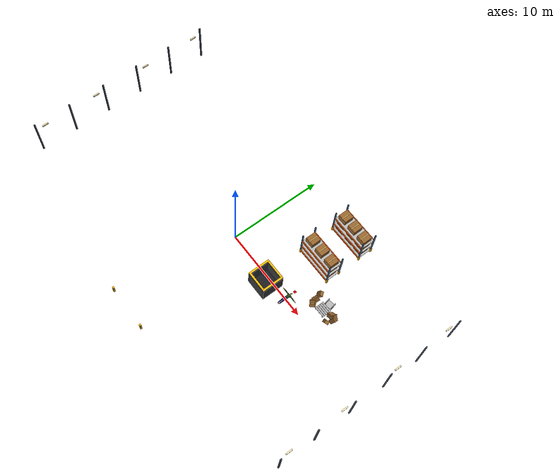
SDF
<sdf version="1.9">
 <world name="factory">
  <model name="pit_2">
   <static>true</static>
   <pose>5 0 0 0 0 0</pose>
   <link name="body">
    <visual name="bottom_visual">
     <pose>0 0 -2.1 0 0 0</pose>
     <geometry><box><size>2.4 2.4 0.2</size></box></geometry>
     <material><ambient>.12 .12 .13 1</ambient><diffuse>.12 .12 .13 1</diffuse></material>
    </visual>
    <collision name="bottom_collision">
     <pose>0 0 -2.1 0 0 0</pose>
     <geometry><box><size>2.4 2.4 0.2</size></box></geometry>
    </collision>
    <visual name="wall0_visual">
     <pose>1.1 0 -1.12 0 0 0</pose>
     <geometry><box><size>0.2 2.4 1.76</size></box></geometry>
     <material><ambient>.22 .23 .24 1</ambient><diffuse>.22 .23 .24 1</diffuse></material>
    </visual>
    <collision name="wall0_collision">
     <pose>1.1 0 -1.12 0 0 0</pose>
     <geometry><box><size>0.2 2.4 1.76</size></box></geometry>
    </collision>
    <visual name="edge0_visual">
     <pose>1.1 0 0.003 0 0 0</pose>
     <geometry><box><size>0.2 2.4 0.006</size></box></geometry>
     <material><ambient>1 .75 .02 1</ambient><diffuse>1 .75 .02 1</diffuse></material>
    </visual>
    <visual name="wall1_visual">
     <pose>-1.1 0 -1.12 0 0 0</pose>
     <geometry><box><size>0.2 2.4 1.76</size></box></geometry>
     <material><ambient>.22 .23 .24 1</ambient><diffuse>.22 .23 .24 1</diffuse></material>
    </visual>
    <collision name="wall1_collision">
     <pose>-1.1 0 -1.12 0 0 0</pose>
     <geometry><box><size>0.2 2.4 1.76</size></box></geometry>
    </collision>
    <visual name="edge1_visual">
     <pose>-1.1 0 0.003 0 0 0</pose>
     <geometry><box><size>0.2 2.4 0.006</size></box></geometry>
     <material><ambient>1 .75 .02 1</ambient><diffuse>1 .75 .02 1</diffuse></material>
    </visual>
    <visual name="wall2_visual">
     <pose>0 1.1 -1.12 0 0 0</pose>
     <geometry><box><size>2 0.2 1.76</size></box></geometry>
     <material><ambient>.22 .23 .24 1</ambient><diffuse>.22 .23 .24 1</diffuse></material>
    </visual>
    <collision name="wall2_collision">
     <pose>0 1.1 -1.12 0 0 0</pose>
     <geometry><box><size>2 0.2 1.76</size></box></geometry>
    </collision>
    <visual name="edge2_visual">
     <pose>0 1.1 0.003 0 0 0</pose>
     <geometry><box><size>2 0.2 0.006</size></box></geometry>
     <material><ambient>1 .75 .02 1</ambient><diffuse>1 .75 .02 1</diffuse></material>
    </visual>
    <visual name="wall3_visual">
     <pose>0 -1.1 -1.12 0 0 0</pose>
     <geometry><box><size>2 0.2 1.76</size></box></geometry>
     <material><ambient>.22 .23 .24 1</ambient><diffuse>.22 .23 .24 1</diffuse></material>
    </visual>
    <collision name="wall3_collision">
     <pose>0 -1.1 -1.12 0 0 0</pose>
     <geometry><box><size>2 0.2 1.76</size></box></geometry>
    </collision>
    <visual name="edge3_visual">
     <pose>0 -1.1 0.003 0 0 0</pose>
     <geometry><box><size>2 0.2 0.006</size></box></geometry>
     <material><ambient>1 .75 .02 1</ambient><diffuse>1 .75 .02 1</diffuse></material>
    </visual>
   </link>
  </model>
  <model name="rack_1_0_2">
   <static>true</static>
   <pose>7 5 0 0 0 0</pose>
   <link name="body">
    <visual name="post0_visual">
     <pose>-2 -0.75 1.8 0 0 0</pose>
     <geometry><box><size>0.12 0.12 3.6</size></box></geometry>
     <material><ambient>.12 .22 .34 1</ambient><diffuse>.12 .22 .34 1</diffuse></material>
    </visual>
    <collision name="post0_collision">
     <pose>-2 -0.75 1.8 0 0 0</pose>
     <geometry><box><size>0.12 0.12 3.6</size></box></geometry>
    </collision>
    <visual name="guard0_visual">
     <pose>-2 -0.75 0.275 0 0 0</pose>
     <geometry><box><size>0.18 0.18 0.55</size></box></geometry>
     <material><ambient>1 .7 .02 1</ambient><diffuse>1 .7 .02 1</diffuse></material>
    </visual>
    <collision name="guard0_collision">
     <pose>-2 -0.75 0.275 0 0 0</pose>
     <geometry><box><size>0.18 0.18 0.55</size></box></geometry>
    </collision>
    <visual name="post1_visual">
     <pose>2 -0.75 1.8 0 0 0</pose>
     <geometry><box><size>0.12 0.12 3.6</size></box></geometry>
     <material><ambient>.12 .22 .34 1</ambient><diffuse>.12 .22 .34 1</diffuse></material>
    </visual>
    <collision name="post1_collision">
     <pose>2 -0.75 1.8 0 0 0</pose>
     <geometry><box><size>0.12 0.12 3.6</size></box></geometry>
    </collision>
    <visual name="guard1_visual">
     <pose>2 -0.75 0.275 0 0 0</pose>
     <geometry><box><size>0.18 0.18 0.55</size></box></geometry>
     <material><ambient>1 .7 .02 1</ambient><diffuse>1 .7 .02 1</diffuse></material>
    </visual>
    <collision name="guard1_collision">
     <pose>2 -0.75 0.275 0 0 0</pose>
     <geometry><box><size>0.18 0.18 0.55</size></box></geometry>
    </collision>
    <visual name="post2_visual">
     <pose>-2 0.75 1.8 0 0 0</pose>
     <geometry><box><size>0.12 0.12 3.6</size></box></geometry>
     <material><ambient>.12 .22 .34 1</ambient><diffuse>.12 .22 .34 1</diffuse></material>
    </visual>
    <collision name="post2_collision">
     <pose>-2 0.75 1.8 0 0 0</pose>
     <geometry><box><size>0.12 0.12 3.6</size></box></geometry>
    </collision>
    <visual name="guard2_visual">
     <pose>-2 0.75 0.275 0 0 0</pose>
     <geometry><box><size>0.18 0.18 0.55</size></box></geometry>
     <material><ambient>1 .7 .02 1</ambient><diffuse>1 .7 .02 1</diffuse></material>
    </visual>
    <collision name="guard2_collision">
     <pose>-2 0.75 0.275 0 0 0</pose>
     <geometry><box><size>0.18 0.18 0.55</size></box></geometry>
    </collision>
    <visual name="post3_visual">
     <pose>2 0.75 1.8 0 0 0</pose>
     <geometry><box><size>0.12 0.12 3.6</size></box></geometry>
     <material><ambient>.12 .22 .34 1</ambient><diffuse>.12 .22 .34 1</diffuse></material>
    </visual>
    <collision name="post3_collision">
     <pose>2 0.75 1.8 0 0 0</pose>
     <geometry><box><size>0.12 0.12 3.6</size></box></geometry>
    </collision>
    <visual name="guard3_visual">
     <pose>2 0.75 0.275 0 0 0</pose>
     <geometry><box><size>0.18 0.18 0.55</size></box></geometry>
     <material><ambient>1 .7 .02 1</ambient><diffuse>1 .7 .02 1</diffuse></material>
    </visual>
    <collision name="guard3_collision">
     <pose>2 0.75 0.275 0 0 0</pose>
     <geometry><box><size>0.18 0.18 0.55</size></box></geometry>
    </collision>
    <visual name="shelf0_visual">
     <pose>0 0 0.3 0 0 0</pose>
     <geometry><mesh><uri>model://factory_scene_assets/meshes/wood_010.dae</uri></mesh></geometry>
    </visual>
    <collision name="shelf0_collision">
     <pose>0 0 0.3 0 0 0</pose>
     <geometry><box><size>4 1.5 0.08</size></box></geometry>
    </collision>
    <visual name="beam0_0_visual">
     <pose>0 -0.77 0.3 0 0 0</pose>
     <geometry><box><size>4 0.08 0.18</size></box></geometry>
     <material><ambient>.95 .35 .035 1</ambient><diffuse>.95 .35 .035 1</diffuse></material>
    </visual>
    <collision name="beam0_0_collision">
     <pose>0 -0.77 0.3 0 0 0</pose>
     <geometry><box><size>4 0.08 0.18</size></box></geometry>
    </collision>
    <visual name="beam0_1_visual">
     <pose>0 0.77 0.3 0 0 0</pose>
     <geometry><box><size>4 0.08 0.18</size></box></geometry>
     <material><ambient>.95 .35 .035 1</ambient><diffuse>.95 .35 .035 1</diffuse></material>
    </visual>
    <collision name="beam0_1_collision">
     <pose>0 0.77 0.3 0 0 0</pose>
     <geometry><box><size>4 0.08 0.18</size></box></geometry>
    </collision>
    <visual name="cargo0_0_visual">
     <pose>-1.35 0 0.665 0 0 0</pose>
     <geometry><box><size>0.95 1 0.65</size></box></geometry>
     <material><ambient>.60 .40 .18 1</ambient><diffuse>.60 .40 .18 1</diffuse></material>
    </visual>
    <collision name="cargo0_0_collision">
     <pose>-1.35 0 0.665 0 0 0</pose>
     <geometry><box><size>0.95 1 0.65</size></box></geometry>
    </collision>
    <visual name="cargo0_0_tape_visual">
     <pose>-1.35 0 0.993 0 0 0</pose>
     <geometry><box><size>0.09 1 0.006</size></box></geometry>
     <material><ambient>.85 .69 .4 1</ambient><diffuse>.85 .69 .4 1</diffuse></material>
    </visual>
    <visual name="cargo0_1_visual">
     <pose>0 0 0.665 0 0 0</pose>
     <geometry><box><size>0.95 1 0.65</size></box></geometry>
     <material><ambient>.60 .40 .18 1</ambient><diffuse>.60 .40 .18 1</diffuse></material>
    </visual>
    <collision name="cargo0_1_collision">
     <pose>0 0 0.665 0 0 0</pose>
     <geometry><box><size>0.95 1 0.65</size></box></geometry>
    </collision>
    <visual name="cargo0_1_tape_visual">
     <pose>0 0 0.993 0 0 0</pose>
     <geometry><box><size>0.09 1 0.006</size></box></geometry>
     <material><ambient>.85 .69 .4 1</ambient><diffuse>.85 .69 .4 1</diffuse></material>
    </visual>
    <visual name="cargo0_2_visual">
     <pose>1.35 0 0.665 0 0 0</pose>
     <geometry><box><size>0.95 1 0.65</size></box></geometry>
     <material><ambient>.60 .40 .18 1</ambient><diffuse>.60 .40 .18 1</diffuse></material>
    </visual>
    <collision name="cargo0_2_collision">
     <pose>1.35 0 0.665 0 0 0</pose>
     <geometry><box><size>0.95 1 0.65</size></box></geometry>
    </collision>
    <visual name="cargo0_2_tape_visual">
     <pose>1.35 0 0.993 0 0 0</pose>
     <geometry><box><size>0.09 1 0.006</size></box></geometry>
     <material><ambient>.85 .69 .4 1</ambient><diffuse>.85 .69 .4 1</diffuse></material>
    </visual>
    <visual name="shelf1_visual">
     <pose>0 0 1.4 0 0 0</pose>
     <geometry><mesh><uri>model://factory_scene_assets/meshes/wood_010.dae</uri></mesh></geometry>
    </visual>
    <collision name="shelf1_collision">
     <pose>0 0 1.4 0 0 0</pose>
     <geometry><box><size>4 1.5 0.08</size></box></geometry>
    </collision>
    <visual name="beam1_0_visual">
     <pose>0 -0.77 1.4 0 0 0</pose>
     <geometry><box><size>4 0.08 0.18</size></box></geometry>
     <material><ambient>.95 .35 .035 1</ambient><diffuse>.95 .35 .035 1</diffuse></material>
    </visual>
    <collision name="beam1_0_collision">
     <pose>0 -0.77 1.4 0 0 0</pose>
     <geometry><box><size>4 0.08 0.18</size></box></geometry>
    </collision>
    <visual name="beam1_1_visual">
     <pose>0 0.77 1.4 0 0 0</pose>
     <geometry><box><size>4 0.08 0.18</size></box></geometry>
     <material><ambient>.95 .35 .035 1</ambient><diffuse>.95 .35 .035 1</diffuse></material>
    </visual>
    <collision name="beam1_1_collision">
     <pose>0 0.77 1.4 0 0 0</pose>
     <geometry><box><size>4 0.08 0.18</size></box></geometry>
    </collision>
    <visual name="cargo1_0_visual">
     <pose>-1.35 0 1.765 0 0 0</pose>
     <geometry><box><size>0.95 1 0.65</size></box></geometry>
     <material><ambient>.60 .40 .18 1</ambient><diffuse>.60 .40 .18 1</diffuse></material>
    </visual>
    <collision name="cargo1_0_collision">
     <pose>-1.35 0 1.765 0 0 0</pose>
     <geometry><box><size>0.95 1 0.65</size></box></geometry>
    </collision>
    <visual name="cargo1_0_tape_visual">
     <pose>-1.35 0 2.093 0 0 0</pose>
     <geometry><box><size>0.09 1 0.006</size></box></geometry>
     <material><ambient>.85 .69 .4 1</ambient><diffuse>.85 .69 .4 1</diffuse></material>
    </visual>
    <visual name="cargo1_1_visual">
     <pose>0 0 1.765 0 0 0</pose>
     <geometry><box><size>0.95 1 0.65</size></box></geometry>
     <material><ambient>.60 .40 .18 1</ambient><diffuse>.60 .40 .18 1</diffuse></material>
    </visual>
    <collision name="cargo1_1_collision">
     <pose>0 0 1.765 0 0 0</pose>
     <geometry><box><size>0.95 1 0.65</size></box></geometry>
    </collision>
    <visual name="cargo1_1_tape_visual">
     <pose>0 0 2.093 0 0 0</pose>
     <geometry><box><size>0.09 1 0.006</size></box></geometry>
     <material><ambient>.85 .69 .4 1</ambient><diffuse>.85 .69 .4 1</diffuse></material>
    </visual>
    <visual name="cargo1_2_visual">
     <pose>1.35 0 1.765 0 0 0</pose>
     <geometry><box><size>0.95 1 0.65</size></box></geometry>
     <material><ambient>.60 .40 .18 1</ambient><diffuse>.60 .40 .18 1</diffuse></material>
    </visual>
    <collision name="cargo1_2_collision">
     <pose>1.35 0 1.765 0 0 0</pose>
     <geometry><box><size>0.95 1 0.65</size></box></geometry>
    </collision>
    <visual name="cargo1_2_tape_visual">
     <pose>1.35 0 2.093 0 0 0</pose>
     <geometry><box><size>0.09 1 0.006</size></box></geometry>
     <material><ambient>.85 .69 .4 1</ambient><diffuse>.85 .69 .4 1</diffuse></material>
    </visual>
    <visual name="shelf2_visual">
     <pose>0 0 2.5 0 0 0</pose>
     <geometry><mesh><uri>model://factory_scene_assets/meshes/wood_010.dae</uri></mesh></geometry>
    </visual>
    <collision name="shelf2_collision">
     <pose>0 0 2.5 0 0 0</pose>
     <geometry><box><size>4 1.5 0.08</size></box></geometry>
    </collision>
    <visual name="beam2_0_visual">
     <pose>0 -0.77 2.5 0 0 0</pose>
     <geometry><box><size>4 0.08 0.18</size></box></geometry>
     <material><ambient>.95 .35 .035 1</ambient><diffuse>.95 .35 .035 1</diffuse></material>
    </visual>
    <collision name="beam2_0_collision">
     <pose>0 -0.77 2.5 0 0 0</pose>
     <geometry><box><size>4 0.08 0.18</size></box></geometry>
    </collision>
    <visual name="beam2_1_visual">
     <pose>0 0.77 2.5 0 0 0</pose>
     <geometry><box><size>4 0.08 0.18</size></box></geometry>
     <material><ambient>.95 .35 .035 1</ambient><diffuse>.95 .35 .035 1</diffuse></material>
    </visual>
    <collision name="beam2_1_collision">
     <pose>0 0.77 2.5 0 0 0</pose>
     <geometry><box><size>4 0.08 0.18</size></box></geometry>
    </collision>
    <visual name="cargo2_0_visual">
     <pose>-1.35 0 2.865 0 0 0</pose>
     <geometry><box><size>0.95 1 0.65</size></box></geometry>
     <material><ambient>.60 .40 .18 1</ambient><diffuse>.60 .40 .18 1</diffuse></material>
    </visual>
    <collision name="cargo2_0_collision">
     <pose>-1.35 0 2.865 0 0 0</pose>
     <geometry><box><size>0.95 1 0.65</size></box></geometry>
    </collision>
    <visual name="cargo2_0_tape_visual">
     <pose>-1.35 0 3.193 0 0 0</pose>
     <geometry><box><size>0.09 1 0.006</size></box></geometry>
     <material><ambient>.85 .69 .4 1</ambient><diffuse>.85 .69 .4 1</diffuse></material>
    </visual>
    <visual name="cargo2_1_visual">
     <pose>0 0 2.865 0 0 0</pose>
     <geometry><box><size>0.95 1 0.65</size></box></geometry>
     <material><ambient>.60 .40 .18 1</ambient><diffuse>.60 .40 .18 1</diffuse></material>
    </visual>
    <collision name="cargo2_1_collision">
     <pose>0 0 2.865 0 0 0</pose>
     <geometry><box><size>0.95 1 0.65</size></box></geometry>
    </collision>
    <visual name="cargo2_1_tape_visual">
     <pose>0 0 3.193 0 0 0</pose>
     <geometry><box><size>0.09 1 0.006</size></box></geometry>
     <material><ambient>.85 .69 .4 1</ambient><diffuse>.85 .69 .4 1</diffuse></material>
    </visual>
    <visual name="cargo2_2_visual">
     <pose>1.35 0 2.865 0 0 0</pose>
     <geometry><box><size>0.95 1 0.65</size></box></geometry>
     <material><ambient>.60 .40 .18 1</ambient><diffuse>.60 .40 .18 1</diffuse></material>
    </visual>
    <collision name="cargo2_2_collision">
     <pose>1.35 0 2.865 0 0 0</pose>
     <geometry><box><size>0.95 1 0.65</size></box></geometry>
    </collision>
    <visual name="cargo2_2_tape_visual">
     <pose>1.35 0 3.193 0 0 0</pose>
     <geometry><box><size>0.09 1 0.006</size></box></geometry>
     <material><ambient>.85 .69 .4 1</ambient><diffuse>.85 .69 .4 1</diffuse></material>
    </visual>
   </link>
  </model>
  <model name="rack_1_0_3">
   <static>true</static>
   <pose>7 9 0 0 0 0</pose>
   <link name="body">
    <visual name="post0_visual">
     <pose>-2 -0.75 1.8 0 0 0</pose>
     <geometry><box><size>0.12 0.12 3.6</size></box></geometry>
     <material><ambient>.12 .22 .34 1</ambient><diffuse>.12 .22 .34 1</diffuse></material>
    </visual>
    <collision name="post0_collision">
     <pose>-2 -0.75 1.8 0 0 0</pose>
     <geometry><box><size>0.12 0.12 3.6</size></box></geometry>
    </collision>
    <visual name="guard0_visual">
     <pose>-2 -0.75 0.275 0 0 0</pose>
     <geometry><box><size>0.18 0.18 0.55</size></box></geometry>
     <material><ambient>1 .7 .02 1</ambient><diffuse>1 .7 .02 1</diffuse></material>
    </visual>
    <collision name="guard0_collision">
     <pose>-2 -0.75 0.275 0 0 0</pose>
     <geometry><box><size>0.18 0.18 0.55</size></box></geometry>
    </collision>
    <visual name="post1_visual">
     <pose>2 -0.75 1.8 0 0 0</pose>
     <geometry><box><size>0.12 0.12 3.6</size></box></geometry>
     <material><ambient>.12 .22 .34 1</ambient><diffuse>.12 .22 .34 1</diffuse></material>
    </visual>
    <collision name="post1_collision">
     <pose>2 -0.75 1.8 0 0 0</pose>
     <geometry><box><size>0.12 0.12 3.6</size></box></geometry>
    </collision>
    <visual name="guard1_visual">
     <pose>2 -0.75 0.275 0 0 0</pose>
     <geometry><box><size>0.18 0.18 0.55</size></box></geometry>
     <material><ambient>1 .7 .02 1</ambient><diffuse>1 .7 .02 1</diffuse></material>
    </visual>
    <collision name="guard1_collision">
     <pose>2 -0.75 0.275 0 0 0</pose>
     <geometry><box><size>0.18 0.18 0.55</size></box></geometry>
    </collision>
    <visual name="post2_visual">
     <pose>-2 0.75 1.8 0 0 0</pose>
     <geometry><box><size>0.12 0.12 3.6</size></box></geometry>
     <material><ambient>.12 .22 .34 1</ambient><diffuse>.12 .22 .34 1</diffuse></material>
    </visual>
    <collision name="post2_collision">
     <pose>-2 0.75 1.8 0 0 0</pose>
     <geometry><box><size>0.12 0.12 3.6</size></box></geometry>
    </collision>
    <visual name="guard2_visual">
     <pose>-2 0.75 0.275 0 0 0</pose>
     <geometry><box><size>0.18 0.18 0.55</size></box></geometry>
     <material><ambient>1 .7 .02 1</ambient><diffuse>1 .7 .02 1</diffuse></material>
    </visual>
    <collision name="guard2_collision">
     <pose>-2 0.75 0.275 0 0 0</pose>
     <geometry><box><size>0.18 0.18 0.55</size></box></geometry>
    </collision>
    <visual name="post3_visual">
     <pose>2 0.75 1.8 0 0 0</pose>
     <geometry><box><size>0.12 0.12 3.6</size></box></geometry>
     <material><ambient>.12 .22 .34 1</ambient><diffuse>.12 .22 .34 1</diffuse></material>
    </visual>
    <collision name="post3_collision">
     <pose>2 0.75 1.8 0 0 0</pose>
     <geometry><box><size>0.12 0.12 3.6</size></box></geometry>
    </collision>
    <visual name="guard3_visual">
     <pose>2 0.75 0.275 0 0 0</pose>
     <geometry><box><size>0.18 0.18 0.55</size></box></geometry>
     <material><ambient>1 .7 .02 1</ambient><diffuse>1 .7 .02 1</diffuse></material>
    </visual>
    <collision name="guard3_collision">
     <pose>2 0.75 0.275 0 0 0</pose>
     <geometry><box><size>0.18 0.18 0.55</size></box></geometry>
    </collision>
    <visual name="shelf0_visual">
     <pose>0 0 0.3 0 0 0</pose>
     <geometry><mesh><uri>model://factory_scene_assets/meshes/wood_010.dae</uri></mesh></geometry>
    </visual>
    <collision name="shelf0_collision">
     <pose>0 0 0.3 0 0 0</pose>
     <geometry><box><size>4 1.5 0.08</size></box></geometry>
    </collision>
    <visual name="beam0_0_visual">
     <pose>0 -0.77 0.3 0 0 0</pose>
     <geometry><box><size>4 0.08 0.18</size></box></geometry>
     <material><ambient>.95 .35 .035 1</ambient><diffuse>.95 .35 .035 1</diffuse></material>
    </visual>
    <collision name="beam0_0_collision">
     <pose>0 -0.77 0.3 0 0 0</pose>
     <geometry><box><size>4 0.08 0.18</size></box></geometry>
    </collision>
    <visual name="beam0_1_visual">
     <pose>0 0.77 0.3 0 0 0</pose>
     <geometry><box><size>4 0.08 0.18</size></box></geometry>
     <material><ambient>.95 .35 .035 1</ambient><diffuse>.95 .35 .035 1</diffuse></material>
    </visual>
    <collision name="beam0_1_collision">
     <pose>0 0.77 0.3 0 0 0</pose>
     <geometry><box><size>4 0.08 0.18</size></box></geometry>
    </collision>
    <visual name="cargo0_0_visual">
     <pose>-1.35 0 0.665 0 0 0</pose>
     <geometry><box><size>0.95 1 0.65</size></box></geometry>
     <material><ambient>.60 .40 .18 1</ambient><diffuse>.60 .40 .18 1</diffuse></material>
    </visual>
    <collision name="cargo0_0_collision">
     <pose>-1.35 0 0.665 0 0 0</pose>
     <geometry><box><size>0.95 1 0.65</size></box></geometry>
    </collision>
    <visual name="cargo0_0_tape_visual">
     <pose>-1.35 0 0.993 0 0 0</pose>
     <geometry><box><size>0.09 1 0.006</size></box></geometry>
     <material><ambient>.85 .69 .4 1</ambient><diffuse>.85 .69 .4 1</diffuse></material>
    </visual>
    <visual name="cargo0_1_visual">
     <pose>0 0 0.665 0 0 0</pose>
     <geometry><box><size>0.95 1 0.65</size></box></geometry>
     <material><ambient>.60 .40 .18 1</ambient><diffuse>.60 .40 .18 1</diffuse></material>
    </visual>
    <collision name="cargo0_1_collision">
     <pose>0 0 0.665 0 0 0</pose>
     <geometry><box><size>0.95 1 0.65</size></box></geometry>
    </collision>
    <visual name="cargo0_1_tape_visual">
     <pose>0 0 0.993 0 0 0</pose>
     <geometry><box><size>0.09 1 0.006</size></box></geometry>
     <material><ambient>.85 .69 .4 1</ambient><diffuse>.85 .69 .4 1</diffuse></material>
    </visual>
    <visual name="cargo0_2_visual">
     <pose>1.35 0 0.665 0 0 0</pose>
     <geometry><box><size>0.95 1 0.65</size></box></geometry>
     <material><ambient>.60 .40 .18 1</ambient><diffuse>.60 .40 .18 1</diffuse></material>
    </visual>
    <collision name="cargo0_2_collision">
     <pose>1.35 0 0.665 0 0 0</pose>
     <geometry><box><size>0.95 1 0.65</size></box></geometry>
    </collision>
    <visual name="cargo0_2_tape_visual">
     <pose>1.35 0 0.993 0 0 0</pose>
     <geometry><box><size>0.09 1 0.006</size></box></geometry>
     <material><ambient>.85 .69 .4 1</ambient><diffuse>.85 .69 .4 1</diffuse></material>
    </visual>
    <visual name="shelf1_visual">
     <pose>0 0 1.4 0 0 0</pose>
     <geometry><mesh><uri>model://factory_scene_assets/meshes/wood_010.dae</uri></mesh></geometry>
    </visual>
    <collision name="shelf1_collision">
     <pose>0 0 1.4 0 0 0</pose>
     <geometry><box><size>4 1.5 0.08</size></box></geometry>
    </collision>
    <visual name="beam1_0_visual">
     <pose>0 -0.77 1.4 0 0 0</pose>
     <geometry><box><size>4 0.08 0.18</size></box></geometry>
     <material><ambient>.95 .35 .035 1</ambient><diffuse>.95 .35 .035 1</diffuse></material>
    </visual>
    <collision name="beam1_0_collision">
     <pose>0 -0.77 1.4 0 0 0</pose>
     <geometry><box><size>4 0.08 0.18</size></box></geometry>
    </collision>
    <visual name="beam1_1_visual">
     <pose>0 0.77 1.4 0 0 0</pose>
     <geometry><box><size>4 0.08 0.18</size></box></geometry>
     <material><ambient>.95 .35 .035 1</ambient><diffuse>.95 .35 .035 1</diffuse></material>
    </visual>
    <collision name="beam1_1_collision">
     <pose>0 0.77 1.4 0 0 0</pose>
     <geometry><box><size>4 0.08 0.18</size></box></geometry>
    </collision>
    <visual name="cargo1_0_visual">
     <pose>-1.35 0 1.765 0 0 0</pose>
     <geometry><box><size>0.95 1 0.65</size></box></geometry>
     <material><ambient>.60 .40 .18 1</ambient><diffuse>.60 .40 .18 1</diffuse></material>
    </visual>
    <collision name="cargo1_0_collision">
     <pose>-1.35 0 1.765 0 0 0</pose>
     <geometry><box><size>0.95 1 0.65</size></box></geometry>
    </collision>
    <visual name="cargo1_0_tape_visual">
     <pose>-1.35 0 2.093 0 0 0</pose>
     <geometry><box><size>0.09 1 0.006</size></box></geometry>
     <material><ambient>.85 .69 .4 1</ambient><diffuse>.85 .69 .4 1</diffuse></material>
    </visual>
    <visual name="cargo1_1_visual">
     <pose>0 0 1.765 0 0 0</pose>
     <geometry><box><size>0.95 1 0.65</size></box></geometry>
     <material><ambient>.60 .40 .18 1</ambient><diffuse>.60 .40 .18 1</diffuse></material>
    </visual>
    <collision name="cargo1_1_collision">
     <pose>0 0 1.765 0 0 0</pose>
     <geometry><box><size>0.95 1 0.65</size></box></geometry>
    </collision>
    <visual name="cargo1_1_tape_visual">
     <pose>0 0 2.093 0 0 0</pose>
     <geometry><box><size>0.09 1 0.006</size></box></geometry>
     <material><ambient>.85 .69 .4 1</ambient><diffuse>.85 .69 .4 1</diffuse></material>
    </visual>
    <visual name="cargo1_2_visual">
     <pose>1.35 0 1.765 0 0 0</pose>
     <geometry><box><size>0.95 1 0.65</size></box></geometry>
     <material><ambient>.60 .40 .18 1</ambient><diffuse>.60 .40 .18 1</diffuse></material>
    </visual>
    <collision name="cargo1_2_collision">
     <pose>1.35 0 1.765 0 0 0</pose>
     <geometry><box><size>0.95 1 0.65</size></box></geometry>
    </collision>
    <visual name="cargo1_2_tape_visual">
     <pose>1.35 0 2.093 0 0 0</pose>
     <geometry><box><size>0.09 1 0.006</size></box></geometry>
     <material><ambient>.85 .69 .4 1</ambient><diffuse>.85 .69 .4 1</diffuse></material>
    </visual>
    <visual name="shelf2_visual">
     <pose>0 0 2.5 0 0 0</pose>
     <geometry><mesh><uri>model://factory_scene_assets/meshes/wood_010.dae</uri></mesh></geometry>
    </visual>
    <collision name="shelf2_collision">
     <pose>0 0 2.5 0 0 0</pose>
     <geometry><box><size>4 1.5 0.08</size></box></geometry>
    </collision>
    <visual name="beam2_0_visual">
     <pose>0 -0.77 2.5 0 0 0</pose>
     <geometry><box><size>4 0.08 0.18</size></box></geometry>
     <material><ambient>.95 .35 .035 1</ambient><diffuse>.95 .35 .035 1</diffuse></material>
    </visual>
    <collision name="beam2_0_collision">
     <pose>0 -0.77 2.5 0 0 0</pose>
     <geometry><box><size>4 0.08 0.18</size></box></geometry>
    </collision>
    <visual name="beam2_1_visual">
     <pose>0 0.77 2.5 0 0 0</pose>
     <geometry><box><size>4 0.08 0.18</size></box></geometry>
     <material><ambient>.95 .35 .035 1</ambient><diffuse>.95 .35 .035 1</diffuse></material>
    </visual>
    <collision name="beam2_1_collision">
     <pose>0 0.77 2.5 0 0 0</pose>
     <geometry><box><size>4 0.08 0.18</size></box></geometry>
    </collision>
    <visual name="cargo2_0_visual">
     <pose>-1.35 0 2.865 0 0 0</pose>
     <geometry><box><size>0.95 1 0.65</size></box></geometry>
     <material><ambient>.60 .40 .18 1</ambient><diffuse>.60 .40 .18 1</diffuse></material>
    </visual>
    <collision name="cargo2_0_collision">
     <pose>-1.35 0 2.865 0 0 0</pose>
     <geometry><box><size>0.95 1 0.65</size></box></geometry>
    </collision>
    <visual name="cargo2_0_tape_visual">
     <pose>-1.35 0 3.193 0 0 0</pose>
     <geometry><box><size>0.09 1 0.006</size></box></geometry>
     <material><ambient>.85 .69 .4 1</ambient><diffuse>.85 .69 .4 1</diffuse></material>
    </visual>
    <visual name="cargo2_1_visual">
     <pose>0 0 2.865 0 0 0</pose>
     <geometry><box><size>0.95 1 0.65</size></box></geometry>
     <material><ambient>.60 .40 .18 1</ambient><diffuse>.60 .40 .18 1</diffuse></material>
    </visual>
    <collision name="cargo2_1_collision">
     <pose>0 0 2.865 0 0 0</pose>
     <geometry><box><size>0.95 1 0.65</size></box></geometry>
    </collision>
    <visual name="cargo2_1_tape_visual">
     <pose>0 0 3.193 0 0 0</pose>
     <geometry><box><size>0.09 1 0.006</size></box></geometry>
     <material><ambient>.85 .69 .4 1</ambient><diffuse>.85 .69 .4 1</diffuse></material>
    </visual>
    <visual name="cargo2_2_visual">
     <pose>1.35 0 2.865 0 0 0</pose>
     <geometry><box><size>0.95 1 0.65</size></box></geometry>
     <material><ambient>.60 .40 .18 1</ambient><diffuse>.60 .40 .18 1</diffuse></material>
    </visual>
    <collision name="cargo2_2_collision">
     <pose>1.35 0 2.865 0 0 0</pose>
     <geometry><box><size>0.95 1 0.65</size></box></geometry>
    </collision>
    <visual name="cargo2_2_tape_visual">
     <pose>1.35 0 3.193 0 0 0</pose>
     <geometry><box><size>0.09 1 0.006</size></box></geometry>
     <material><ambient>.85 .69 .4 1</ambient><diffuse>.85 .69 .4 1</diffuse></material>
    </visual>
   </link>
  </model>
  <model name="fallen_pallet_9">
   <static>true</static>
   <pose>11 2.2 0 0 0 0</pose>
   <link name="body">
    <visual name="runner0_visual">
     <pose>-0.48 0 0.065 0 0 0</pose>
     <geometry><mesh><uri>model://factory_scene_assets/meshes/wood_011.dae</uri></mesh></geometry>
    </visual>
    <collision name="runner0_collision">
     <pose>-0.48 0 0.065 0 0 0</pose>
     <geometry><box><size>0.12 1 0.13</size></box></geometry>
    </collision>
    <visual name="runner1_visual">
     <pose>0 0 0.065 0 0 0</pose>
     <geometry><mesh><uri>model://factory_scene_assets/meshes/wood_011.dae</uri></mesh></geometry>
    </visual>
    <collision name="runner1_collision">
     <pose>0 0 0.065 0 0 0</pose>
     <geometry><box><size>0.12 1 0.13</size></box></geometry>
    </collision>
    <visual name="runner2_visual">
     <pose>0.48 0 0.065 0 0 0</pose>
     <geometry><mesh><uri>model://factory_scene_assets/meshes/wood_011.dae</uri></mesh></geometry>
    </visual>
    <collision name="runner2_collision">
     <pose>0.48 0 0.065 0 0 0</pose>
     <geometry><box><size>0.12 1 0.13</size></box></geometry>
    </collision>
    <visual name="plank0_visual">
     <pose>0 -0.4 0.155 0 0 0</pose>
     <geometry><mesh><uri>model://factory_scene_assets/meshes/wood_012.dae</uri></mesh></geometry>
    </visual>
    <collision name="plank0_collision">
     <pose>0 -0.4 0.155 0 0 0</pose>
     <geometry><box><size>1.2 0.16 0.05</size></box></geometry>
    </collision>
    <visual name="plank1_visual">
     <pose>0 -0.2 0.155 0 0 0</pose>
     <geometry><mesh><uri>model://factory_scene_assets/meshes/wood_012.dae</uri></mesh></geometry>
    </visual>
    <collision name="plank1_collision">
     <pose>0 -0.2 0.155 0 0 0</pose>
     <geometry><box><size>1.2 0.16 0.05</size></box></geometry>
    </collision>
    <visual name="plank2_visual">
     <pose>0 0 0.155 0 0 0</pose>
     <geometry><mesh><uri>model://factory_scene_assets/meshes/wood_012.dae</uri></mesh></geometry>
    </visual>
    <collision name="plank2_collision">
     <pose>0 0 0.155 0 0 0</pose>
     <geometry><box><size>1.2 0.16 0.05</size></box></geometry>
    </collision>
    <visual name="plank3_visual">
     <pose>0 0.2 0.155 0 0 0</pose>
     <geometry><mesh><uri>model://factory_scene_assets/meshes/wood_012.dae</uri></mesh></geometry>
    </visual>
    <collision name="plank3_collision">
     <pose>0 0.2 0.155 0 0 0</pose>
     <geometry><box><size>1.2 0.16 0.05</size></box></geometry>
    </collision>
    <visual name="plank4_visual">
     <pose>0 0.4 0.155 0 0 0</pose>
     <geometry><mesh><uri>model://factory_scene_assets/meshes/wood_012.dae</uri></mesh></geometry>
    </visual>
    <collision name="plank4_collision">
     <pose>0 0.4 0.155 0 0 0</pose>
     <geometry><box><size>1.2 0.16 0.05</size></box></geometry>
    </collision>
   </link>
  </model>
  <model name="fallen_box_09_0">
   <static>true</static>
   <pose>12 2.382422 0 0 0 0</pose>
   <link name="body">
    <visual name="box_visual">
     <pose>0 0 0.431669 0.8768055 0.4055489 1.200922</pose>
     <geometry><box><size>0.6166996 0.3838821 0.5595808</size></box></geometry>
     <material><ambient>.60 .40 .18 1</ambient><diffuse>.60 .40 .18 1</diffuse></material>
    </visual>
    <collision name="box_collision">
     <pose>0 0 0.431669 0.8768055 0.4055489 1.200922</pose>
     <geometry><box><size>0.6166996 0.3838821 0.5595808</size></box></geometry>
    </collision>
    <visual name="box_tape_visual">
     <pose>0.2284764 -0.01204902 0.597873 0.8768055 0.4055489 1.200922</pose>
     <geometry><box><size>0.09 0.3838821 0.006</size></box></geometry>
     <material><ambient>.85 .69 .4 1</ambient><diffuse>.85 .69 .4 1</diffuse></material>
    </visual>
   </link>
  </model>
  <model name="fallen_box_09_1">
   <static>true</static>
   <pose>10 1.730191 0 0 0 0</pose>
   <link name="body">
    <visual name="box_visual">
     <pose>0 0 0.4207733 -0.329939 -0.4907775 2.423909</pose>
     <geometry><box><size>0.6677459 0.5160918 0.430683</size></box></geometry>
     <material><ambient>.60 .40 .18 1</ambient><diffuse>.60 .40 .18 1</diffuse></material>
    </visual>
    <collision name="box_collision">
     <pose>0 0 0.4207733 -0.329939 -0.4907775 2.423909</pose>
     <geometry><box><size>0.6677459 0.5160918 0.430683</size></box></geometry>
    </collision>
    <visual name="box_tape_visual">
     <pose>0.02682038 -0.1173158 0.6029564 -0.329939 -0.4907775 2.423909</pose>
     <geometry><box><size>0.09 0.5160918 0.006</size></box></geometry>
     <material><ambient>.85 .69 .4 1</ambient><diffuse>.85 .69 .4 1</diffuse></material>
    </visual>
   </link>
  </model>
  <model name="fallen_box_09_2">
   <static>true</static>
   <pose>12.16 1.606391 0 0 0 0</pose>
   <link name="body">
    <visual name="box_visual">
     <pose>0 0 0.3639528 0.374466 0.6010912 0.5339985</pose>
     <geometry><box><size>0.4698667 0.3464219 0.4399263</size></box></geometry>
     <material><ambient>.60 .40 .18 1</ambient><diffuse>.60 .40 .18 1</diffuse></material>
    </visual>
    <collision name="box_collision">
     <pose>0 0 0.3639528 0.374466 0.6010912 0.5339985</pose>
     <geometry><box><size>0.4698667 0.3464219 0.4399263</size></box></geometry>
    </collision>
    <visual name="box_tape_visual">
     <pose>0.1425281 -0.010468 0.5350923 0.374466 0.6010912 0.5339985</pose>
     <geometry><box><size>0.09 0.3464219 0.006</size></box></geometry>
     <material><ambient>.85 .69 .4 1</ambient><diffuse>.85 .69 .4 1</diffuse></material>
    </visual>
   </link>
  </model>
  <model name="fallen_box_09_3">
   <static>true</static>
   <pose>9.84 2.235218 0 0 0 0</pose>
   <link name="body">
    <visual name="box_visual">
     <pose>0 0 0.388795 0.6081188 0.3014942 -1.730814</pose>
     <geometry><box><size>0.5890528 0.3655803 0.4889961</size></box></geometry>
     <material><ambient>.60 .40 .18 1</ambient><diffuse>.60 .40 .18 1</diffuse></material>
    </visual>
    <collision name="box_collision">
     <pose>0 0 0.388795 0.6081188 0.3014942 -1.730814</pose>
     <geometry><box><size>0.5890528 0.3655803 0.4889961</size></box></geometry>
    </collision>
    <visual name="box_tape_visual">
     <pose>-0.1492061 -0.03701724 0.5827603 0.6081188 0.3014942 -1.730814</pose>
     <geometry><box><size>0.09 0.3655803 0.006</size></box></geometry>
     <material><ambient>.85 .69 .4 1</ambient><diffuse>.85 .69 .4 1</diffuse></material>
    </visual>
   </link>
  </model>
  <model name="fallen_box_09_4">
   <static>true</static>
   <pose>12.32 2.42593 0 0 0 0</pose>
   <link name="body">
    <visual name="box_visual">
     <pose>0 0 0.4412476 -0.6258268 -0.5956674 0.452533</pose>
     <geometry><box><size>0.3634527 0.5242223 0.6027621</size></box></geometry>
     <material><ambient>.60 .40 .18 1</ambient><diffuse>.60 .40 .18 1</diffuse></material>
    </visual>
    <collision name="box_collision">
     <pose>0 0 0.4412476 -0.6258268 -0.5956674 0.452533</pose>
     <geometry><box><size>0.3634527 0.5242223 0.6027621</size></box></geometry>
    </collision>
    <visual name="box_tape_visual">
     <pose>-0.2024379 0.09983025 0.6454549 -0.6258268 -0.5956674 0.452533</pose>
     <geometry><box><size>0.09 0.5242223 0.006</size></box></geometry>
     <material><ambient>.85 .69 .4 1</ambient><diffuse>.85 .69 .4 1</diffuse></material>
    </visual>
   </link>
  </model>
  <model name="fallen_box_09_5">
   <static>true</static>
   <pose>9.68 2.879211 0 0 0 0</pose>
   <link name="body">
    <visual name="box_visual">
     <pose>0 0 0.3655061 0.1044767 -0.622783 -2.512094</pose>
     <geometry><box><size>0.3775447 0.4973008 0.555397</size></box></geometry>
     <material><ambient>.60 .40 .18 1</ambient><diffuse>.60 .40 .18 1</diffuse></material>
    </visual>
    <collision name="box_collision">
     <pose>0 0 0.3655061 0.1044767 -0.622783 -2.512094</pose>
     <geometry><box><size>0.3775447 0.4973008 0.555397</size></box></geometry>
    </collision>
    <visual name="box_tape_visual">
     <pose>0.1143915 0.1195313 0.5922625 0.1044767 -0.622783 -2.512094</pose>
     <geometry><box><size>0.09 0.4973008 0.006</size></box></geometry>
     <material><ambient>.85 .69 .4 1</ambient><diffuse>.85 .69 .4 1</diffuse></material>
    </visual>
   </link>
  </model>
  <model name="fallen_box_09_6">
   <static>true</static>
   <pose>12.48 2.222065 0 0 0 0</pose>
   <link name="body">
    <visual name="box_visual">
     <pose>0 0 0.4482166 -0.3904405 -0.6480042 -1.482832</pose>
     <geometry><box><size>0.5384922 0.4175256 0.5760375</size></box></geometry>
     <material><ambient>.60 .40 .18 1</ambient><diffuse>.60 .40 .18 1</diffuse></material>
    </visual>
    <collision name="box_collision">
     <pose>0 0 0.4482166 -0.3904405 -0.6480042 -1.482832</pose>
     <geometry><box><size>0.5384922 0.4175256 0.5760375</size></box></geometry>
    </collision>
    <visual name="box_tape_visual">
     <pose>0.09606191 0.1715405 0.662781 -0.3904405 -0.6480042 -1.482832</pose>
     <geometry><box><size>0.09 0.4175256 0.006</size></box></geometry>
     <material><ambient>.85 .69 .4 1</ambient><diffuse>.85 .69 .4 1</diffuse></material>
    </visual>
   </link>
  </model>
  <model name="broken_crate_09">
   <static>true</static>
   <pose>11 3.05 0 0 0 0.1965208</pose>
   <link name="body">
    <visual name="base_visual">
     <pose>0 0 0.03 0 0 0</pose>
     <geometry><mesh><uri>model://factory_scene_assets/meshes/wood_013.dae</uri></mesh></geometry>
    </visual>
    <collision name="base_collision">
     <pose>0 0 0.03 0 0 0</pose>
     <geometry><box><size>0.8 0.65 0.06</size></box></geometry>
    </collision>
    <visual name="side0_visual">
     <pose>-0.37 0 0.28 0 0 0</pose>
     <geometry><mesh><uri>model://factory_scene_assets/meshes/wood_014.dae</uri></mesh></geometry>
    </visual>
    <collision name="side0_collision">
     <pose>-0.37 0 0.28 0 0 0</pose>
     <geometry><box><size>0.06 0.65 0.5</size></box></geometry>
    </collision>
    <visual name="side1_visual">
     <pose>0.37 0 0.28 0 0 0</pose>
     <geometry><mesh><uri>model://factory_scene_assets/meshes/wood_014.dae</uri></mesh></geometry>
    </visual>
    <collision name="side1_collision">
     <pose>0.37 0 0.28 0 0 0</pose>
     <geometry><box><size>0.06 0.65 0.5</size></box></geometry>
    </collision>
   </link>
  </model>
  <model name="building_details">
   <static>true</static>
   <link name="body">
    <visual name="wall_rib_-1_0_visual">
     <pose>-19.94 -10 2.25 0 0 0</pose>
     <geometry><box><size>0.12 0.16 4.5</size></box></geometry>
     <material><ambient>.29 .33 .38 1</ambient><diffuse>.29 .33 .38 1</diffuse></material>
    </visual>
    <collision name="wall_rib_-1_0_collision">
     <pose>-19.94 -10 2.25 0 0 0</pose>
     <geometry><box><size>0.12 0.16 4.5</size></box></geometry>
    </collision>
    <visual name="wall_rib_-1_1_visual">
     <pose>-19.94 -6 2.25 0 0 0</pose>
     <geometry><box><size>0.12 0.16 4.5</size></box></geometry>
     <material><ambient>.29 .33 .38 1</ambient><diffuse>.29 .33 .38 1</diffuse></material>
    </visual>
    <collision name="wall_rib_-1_1_collision">
     <pose>-19.94 -6 2.25 0 0 0</pose>
     <geometry><box><size>0.12 0.16 4.5</size></box></geometry>
    </collision>
    <visual name="wall_rib_-1_2_visual">
     <pose>-19.94 -2 2.25 0 0 0</pose>
     <geometry><box><size>0.12 0.16 4.5</size></box></geometry>
     <material><ambient>.29 .33 .38 1</ambient><diffuse>.29 .33 .38 1</diffuse></material>
    </visual>
    <collision name="wall_rib_-1_2_collision">
     <pose>-19.94 -2 2.25 0 0 0</pose>
     <geometry><box><size>0.12 0.16 4.5</size></box></geometry>
    </collision>
    <visual name="wall_rib_-1_3_visual">
     <pose>-19.94 2 2.25 0 0 0</pose>
     <geometry><box><size>0.12 0.16 4.5</size></box></geometry>
     <material><ambient>.29 .33 .38 1</ambient><diffuse>.29 .33 .38 1</diffuse></material>
    </visual>
    <collision name="wall_rib_-1_3_collision">
     <pose>-19.94 2 2.25 0 0 0</pose>
     <geometry><box><size>0.12 0.16 4.5</size></box></geometry>
    </collision>
    <visual name="wall_rib_-1_4_visual">
     <pose>-19.94 6 2.25 0 0 0</pose>
     <geometry><box><size>0.12 0.16 4.5</size></box></geometry>
     <material><ambient>.29 .33 .38 1</ambient><diffuse>.29 .33 .38 1</diffuse></material>
    </visual>
    <collision name="wall_rib_-1_4_collision">
     <pose>-19.94 6 2.25 0 0 0</pose>
     <geometry><box><size>0.12 0.16 4.5</size></box></geometry>
    </collision>
    <visual name="wall_rib_-1_5_visual">
     <pose>-19.94 10 2.25 0 0 0</pose>
     <geometry><box><size>0.12 0.16 4.5</size></box></geometry>
     <material><ambient>.29 .33 .38 1</ambient><diffuse>.29 .33 .38 1</diffuse></material>
    </visual>
    <collision name="wall_rib_-1_5_collision">
     <pose>-19.94 10 2.25 0 0 0</pose>
     <geometry><box><size>0.12 0.16 4.5</size></box></geometry>
    </collision>
    <visual name="wall_rib_1_0_visual">
     <pose>19.94 -10 2.25 0 0 0</pose>
     <geometry><box><size>0.12 0.16 4.5</size></box></geometry>
     <material><ambient>.29 .33 .38 1</ambient><diffuse>.29 .33 .38 1</diffuse></material>
    </visual>
    <collision name="wall_rib_1_0_collision">
     <pose>19.94 -10 2.25 0 0 0</pose>
     <geometry><box><size>0.12 0.16 4.5</size></box></geometry>
    </collision>
    <visual name="wall_rib_1_1_visual">
     <pose>19.94 -6 2.25 0 0 0</pose>
     <geometry><box><size>0.12 0.16 4.5</size></box></geometry>
     <material><ambient>.29 .33 .38 1</ambient><diffuse>.29 .33 .38 1</diffuse></material>
    </visual>
    <collision name="wall_rib_1_1_collision">
     <pose>19.94 -6 2.25 0 0 0</pose>
     <geometry><box><size>0.12 0.16 4.5</size></box></geometry>
    </collision>
    <visual name="wall_rib_1_2_visual">
     <pose>19.94 -2 2.25 0 0 0</pose>
     <geometry><box><size>0.12 0.16 4.5</size></box></geometry>
     <material><ambient>.29 .33 .38 1</ambient><diffuse>.29 .33 .38 1</diffuse></material>
    </visual>
    <collision name="wall_rib_1_2_collision">
     <pose>19.94 -2 2.25 0 0 0</pose>
     <geometry><box><size>0.12 0.16 4.5</size></box></geometry>
    </collision>
    <visual name="wall_rib_1_3_visual">
     <pose>19.94 2 2.25 0 0 0</pose>
     <geometry><box><size>0.12 0.16 4.5</size></box></geometry>
     <material><ambient>.29 .33 .38 1</ambient><diffuse>.29 .33 .38 1</diffuse></material>
    </visual>
    <collision name="wall_rib_1_3_collision">
     <pose>19.94 2 2.25 0 0 0</pose>
     <geometry><box><size>0.12 0.16 4.5</size></box></geometry>
    </collision>
    <visual name="wall_rib_1_4_visual">
     <pose>19.94 6 2.25 0 0 0</pose>
     <geometry><box><size>0.12 0.16 4.5</size></box></geometry>
     <material><ambient>.29 .33 .38 1</ambient><diffuse>.29 .33 .38 1</diffuse></material>
    </visual>
    <collision name="wall_rib_1_4_collision">
     <pose>19.94 6 2.25 0 0 0</pose>
     <geometry><box><size>0.12 0.16 4.5</size></box></geometry>
    </collision>
    <visual name="wall_rib_1_5_visual">
     <pose>19.94 10 2.25 0 0 0</pose>
     <geometry><box><size>0.12 0.16 4.5</size></box></geometry>
     <material><ambient>.29 .33 .38 1</ambient><diffuse>.29 .33 .38 1</diffuse></material>
    </visual>
    <collision name="wall_rib_1_5_collision">
     <pose>19.94 10 2.25 0 0 0</pose>
     <geometry><box><size>0.12 0.16 4.5</size></box></geometry>
    </collision>
    <visual name="gate_bollard0_visual">
     <pose>-2.3 -12.65 0.5 0 0 0</pose>
     <geometry><box><size>0.18 0.18 1</size></box></geometry>
     <material><ambient>1 .72 .03 1</ambient><diffuse>1 .72 .03 1</diffuse></material>
    </visual>
    <collision name="gate_bollard0_collision">
     <pose>-2.3 -12.65 0.5 0 0 0</pose>
     <geometry><box><size>0.18 0.18 1</size></box></geometry>
    </collision>
    <visual name="gate_bollard_band0_visual">
     <pose>-2.3 -12.65 0.72 0 0 0</pose>
     <geometry><box><size>0.185 0.185 0.15</size></box></geometry>
     <material><ambient>.06 .06 .06 1</ambient><diffuse>.06 .06 .06 1</diffuse></material>
    </visual>
    <visual name="gate_bollard1_visual">
     <pose>2.3 -12.65 0.5 0 0 0</pose>
     <geometry><box><size>0.18 0.18 1</size></box></geometry>
     <material><ambient>1 .72 .03 1</ambient><diffuse>1 .72 .03 1</diffuse></material>
    </visual>
    <collision name="gate_bollard1_collision">
     <pose>2.3 -12.65 0.5 0 0 0</pose>
     <geometry><box><size>0.18 0.18 1</size></box></geometry>
    </collision>
    <visual name="gate_bollard_band1_visual">
     <pose>2.3 -12.65 0.72 0 0 0</pose>
     <geometry><box><size>0.185 0.185 0.15</size></box></geometry>
     <material><ambient>.06 .06 .06 1</ambient><diffuse>.06 .06 .06 1</diffuse></material>
    </visual>
    <visual name="wall_lamp_-1_0_visual">
     <pose>-19.8 -9 3.8 0 0 0</pose>
     <geometry><box><size>0.12 0.65 0.18</size></box></geometry>
     <material>
      <ambient>1 .93 .72 1</ambient>
      <diffuse>1 .93 .72 1</diffuse>
      <emissive>1 .85 .5 1</emissive>
     </material>
    </visual>
    <visual name="wall_lamp_-1_1_visual">
     <pose>-19.8 -3 3.8 0 0 0</pose>
     <geometry><box><size>0.12 0.65 0.18</size></box></geometry>
     <material>
      <ambient>1 .93 .72 1</ambient>
      <diffuse>1 .93 .72 1</diffuse>
      <emissive>1 .85 .5 1</emissive>
     </material>
    </visual>
    <visual name="wall_lamp_-1_2_visual">
     <pose>-19.8 3 3.8 0 0 0</pose>
     <geometry><box><size>0.12 0.65 0.18</size></box></geometry>
     <material>
      <ambient>1 .93 .72 1</ambient>
      <diffuse>1 .93 .72 1</diffuse>
      <emissive>1 .85 .5 1</emissive>
     </material>
    </visual>
    <visual name="wall_lamp_-1_3_visual">
     <pose>-19.8 9 3.8 0 0 0</pose>
     <geometry><box><size>0.12 0.65 0.18</size></box></geometry>
     <material>
      <ambient>1 .93 .72 1</ambient>
      <diffuse>1 .93 .72 1</diffuse>
      <emissive>1 .85 .5 1</emissive>
     </material>
    </visual>
    <visual name="wall_lamp_1_0_visual">
     <pose>19.8 -9 3.8 0 0 0</pose>
     <geometry><box><size>0.12 0.65 0.18</size></box></geometry>
     <material>
      <ambient>1 .93 .72 1</ambient>
      <diffuse>1 .93 .72 1</diffuse>
      <emissive>1 .85 .5 1</emissive>
     </material>
    </visual>
    <visual name="wall_lamp_1_1_visual">
     <pose>19.8 -3 3.8 0 0 0</pose>
     <geometry><box><size>0.12 0.65 0.18</size></box></geometry>
     <material>
      <ambient>1 .93 .72 1</ambient>
      <diffuse>1 .93 .72 1</diffuse>
      <emissive>1 .85 .5 1</emissive>
     </material>
    </visual>
    <visual name="wall_lamp_1_2_visual">
     <pose>19.8 3 3.8 0 0 0</pose>
     <geometry><box><size>0.12 0.65 0.18</size></box></geometry>
     <material>
      <ambient>1 .93 .72 1</ambient>
      <diffuse>1 .93 .72 1</diffuse>
      <emissive>1 .85 .5 1</emissive>
     </material>
    </visual>
    <visual name="wall_lamp_1_3_visual">
     <pose>19.8 9 3.8 0 0 0</pose>
     <geometry><box><size>0.12 0.65 0.18</size></box></geometry>
     <material>
      <ambient>1 .93 .72 1</ambient>
      <diffuse>1 .93 .72 1</diffuse>
      <emissive>1 .85 .5 1</emissive>
     </material>
    </visual>
   </link>
  </model>
  <model name="victim_dead">
   <static>true</static>
   <pose>8 0 0 0 0 0</pose>
   <link name="body">
    <visual name="person_visual">
     <geometry><mesh><uri>model://factory_scene_assets/meshes/victim_supine.dae</uri></mesh></geometry>
    </visual>
    <visual name="status_marker_visual">
     <pose>0 1.2 0.003 0 0 0</pose>
     <geometry><box><size>0.25 0.25 0.006</size></box></geometry>
     <material><ambient>.8 .02 .02 1</ambient><diffuse>.8 .02 .02 1</diffuse></material>
    </visual>
    <collision name="torso_collision">
     <pose>0 0 .182 0 0 0</pose>
     <geometry><box><size>.42 1.5 .34</size></box></geometry>
    </collision>
    <collision name="arms_collision">
     <pose>0 .42 .13 0 0 0</pose>
     <geometry><box><size>1.92 .22 .22</size></box></geometry>
    </collision>
    <collision name="head_collision">
     <pose>0 .735 .16 0 0 0</pose>
     <geometry><box><size>.28 .28 .24</size></box></geometry>
    </collision>
   </link>
  </model>
 </world>
</sdf>
